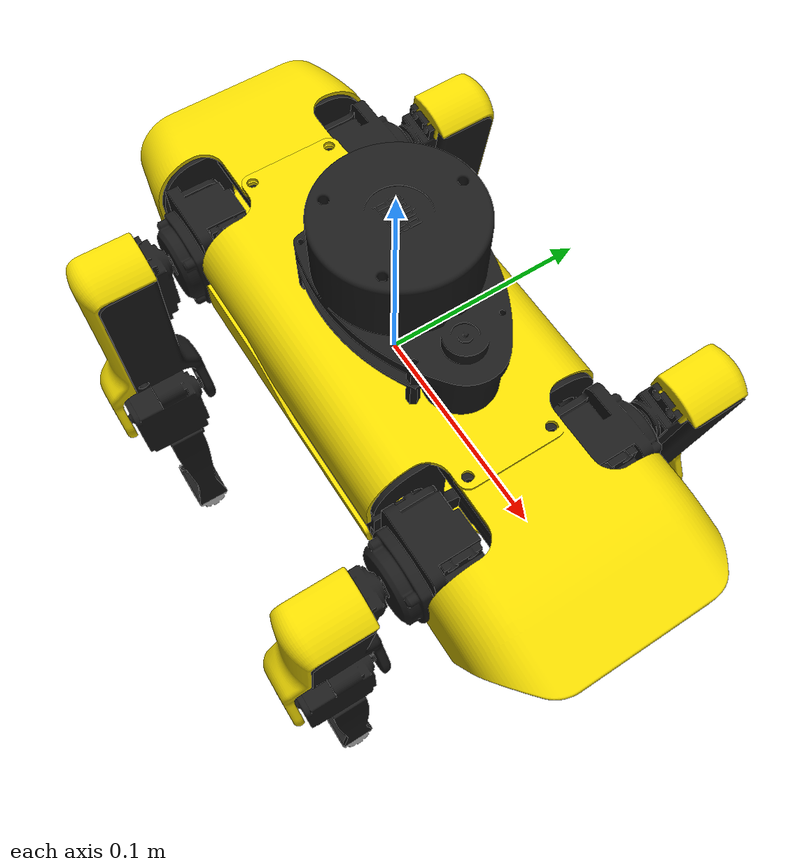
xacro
<?xml version="1.0"?>
<robot xmlns:xacro="http://www.ros.org/wiki/xacro" name="spot_micro_rviz">

  <material name="yellow">
    <color rgba="0.92 0.83 0.0 1"/>
  </material>
  <material name="black">
    <color rgba="0.1 0.1 0.1 1"/>
  </material>
  <material name="grey">
    <color rgba="0.6 0.6 0.6 1"/>
  </material>

  <!-- Params -->

  <xacro:property name="body_length" value="0.140" />
  <xacro:property name="body_width" value="0.110" />
  <xacro:property name="body_height" value="0.070" />

  <xacro:property name="lidar_length" value="0.0985" />
  <xacro:property name="lidar_width" value="0.0577" />
  <xacro:property name="lidar_height" value="0.070" />

  <xacro:property name="front_length" value="0.058" />
  <xacro:property name="rear_length" value="0.040" />

  <xacro:property name="shoulder_length" value="0.044" />
  <xacro:property name="shoulder_width" value="0.038" />

  <xacro:property name="leg_length" value="0.1075" />
  <xacro:property name="foot_length" value="0.130" />

  <xacro:property name="toe_radius" value="0.020" />
  <xacro:property name="toe_width" value="0.020" />
  <xacro:property name="shift" value="0.055" />
  <xacro:property name="shiftx" value="0.093" />
  <xacro:property name="shifty" value="0.039" />

  <!-- Macros -->

  <xacro:macro name="gen_shoulder" params="name left">
    <link name="${name}">
      <visual>
        <xacro:if value="${left}">
        <geometry>
          <mesh filename="package://spot_micro_rviz/urdf/stl/lshoulder.stl" scale="0.001 0.001 0.001"/>
        </geometry>
        <origin rpy="0 0 3.14159" xyz="0.135 0.015 -0.01"/>
        </xacro:if>
        <xacro:unless value="${left}">
        <geometry>
          <mesh filename="package://spot_micro_rviz/urdf/stl/rshoulder.stl" scale="0.001 0.001 0.001"/>
        </geometry>
        <origin rpy="0 0 3.14159" xyz="0.135 0.095 -0.01"/>
        </xacro:unless>
        <material name="black"/>
      </visual>
      <collision>
        <geometry>
          <box size="${shoulder_length} ${shoulder_width} ${body_height}"/>
        </geometry>
        <origin rpy="0 0 0" xyz="0 0 0"/>
      </collision>
      <inertial>
        <mass value="0.10"/>
        <inertia ixx="100" ixy="0" ixz="0" iyy="100" iyz="0" izz="100" />
      </inertial>
    </link>
  </xacro:macro>

  <xacro:macro name="gen_shoulder_joint" params="pos shiftx shifty">
    <joint name="${pos}_shoulder" type="revolute">
      <parent link="base_link"/>
      <child link="${pos}_shoulder_link"/>
      <axis xyz="1 0 0"/>
      <origin rpy="0 0 0" xyz="${shiftx} ${shifty} 0"/>
      <limit effort="1000.0" lower="-0.548" upper="0.548" velocity="0.7"/>
      <dynamics damping="0.0" friction="0.5"/>
    </joint>
  </xacro:macro>

  <xacro:macro name="gen_leg" params="name left">
    <link name="${name}_cover">
      <visual>
        <xacro:if value="${left}">
        <geometry>
          <mesh filename="package://spot_micro_rviz/urdf/stl/larm_cover.stl" scale="0.001 0.001 0.001"/>
        </geometry>
        <origin rpy="0 -0.139 3.14159" xyz="0.130 -0.040 -0.025"/>
        </xacro:if>
        <xacro:unless value="${left}">
        <geometry>
          <mesh filename="package://spot_micro_rviz/urdf/stl/rarm_cover.stl" scale="0.001 0.001 0.001"/>
        </geometry>
        <origin rpy="0 -0.139 3.14159" xyz="0.130 0.15 -0.025"/>
        </xacro:unless>
        <material name="yellow"/>
      </visual>
    </link>
    <link name="${name}">
      <visual>
        <xacro:if value="${left}">
        <geometry>
          <mesh filename="package://spot_micro_rviz/urdf/stl/larm.stl" scale="0.001 0.001 0.001"/>
        </geometry>
        <origin rpy="0 -0.139 3.14159" xyz="0.130 -0.040 -0.025"/>
        </xacro:if>
        <xacro:unless value="${left}">
        <geometry>
          <mesh filename="package://spot_micro_rviz/urdf/stl/rarm.stl" scale="0.001 0.001 0.001"/>
        </geometry>
        <origin rpy="0 -0.139 3.14159" xyz="0.130 0.15 -0.025"/>
        </xacro:unless>
        <material name="black"/>
      </visual>
      <collision>
        <origin rpy="0.0 0.0 0.0" xyz="0.0 0.0 -0.050"/>
        <geometry>
          <box size="0.028 0.036 ${leg_length}"/>
        </geometry>
      </collision>
      <inertial>
        <mass value="0.15"/>
        <inertia ixx="1000" ixy="0" ixz="0" iyy="1000" iyz="0" izz="1000" />
      </inertial>
    </link>
  </xacro:macro>

  <xacro:macro name="gen_leg_joint" params="pos shift">
    <joint name="${pos}_leg" type="revolute">
      <parent link="${pos}_shoulder_link"/>
      <child link="${pos}_leg_link"/>
      <axis xyz="0 1 0"/>
      <origin rpy="0 0 0" xyz="0 ${shift} 0"/>
      <limit effort="1000.0" lower="-2.666" upper="1.548" velocity="0.5"/>
      <dynamics damping="0.0" friction="0.0"/>
    </joint>

    <joint name="${pos}_leg_cover_joint" type="fixed">
    <parent link="${pos}_leg_link"/>
    <child link="${pos}_leg_link_cover"/>
        <origin xyz="0 0 0"/>
  </joint>
  </xacro:macro>

  <xacro:macro name="gen_foot" params="name left">
    <link name="${name}">
      <visual>
        <xacro:if value="${left}">
        <geometry>
          <mesh filename="package://spot_micro_rviz/urdf/stl/lfoot.stl" scale="0.001 0.001 0.001"/>
        </geometry>
        <origin rpy="0 0 3.14159" xyz="0.120 -0.04 0.1"/>
        </xacro:if>
        <xacro:unless value="${left}">
        <geometry>
          <mesh filename="package://spot_micro_rviz/urdf/stl/rfoot.stl" scale="0.001 0.001 0.001"/>
        </geometry>
        <origin rpy="0 0 3.14159" xyz="0.120 0.15 0.1"/>
        </xacro:unless>
        <material name="black"/>
      </visual>
      <collision>
        <geometry>
          <box size="0.026 0.020 ${foot_length}"/>
        </geometry>
        <origin rpy="0.0 0.0 0.0" xyz="0.0 0.0 -0.050"/>
      </collision>
      <inertial>
        <mass value="0.1"/>
        <inertia ixx="1000" ixy="0" ixz="0" iyy="1000" iyz="0" izz="1000" />
      </inertial>
    </link>
  </xacro:macro>

  <xacro:macro name="gen_foot_joint" params="pos">
    <joint name="${pos}_foot" type="revolute">
      <parent link="${pos}_leg_link"/>
      <child link="${pos}_foot_link"/>
      <axis xyz="0 1 0"/>
      <origin rpy="0 0 0" xyz="0 0 -${leg_length}"/>
      <limit effort="1000.0" lower="-2.6" upper="0.1" velocity="0.5"/>
      <dynamics damping="0.0" friction="0.5"/>
    </joint>
  </xacro:macro>

  <xacro:macro name="gen_toe" params="name">
    <link name="${name}">
      <visual>
        <geometry>
        <mesh filename="package://spot_micro_rviz/urdf/stl/foot.stl" scale="0.001 0.001 0.001"/>
        </geometry>
        <origin rpy="0 -0.40010 3.14159" xyz="0.00 0.01 0.015"/>
        <material name="grey"/>
      </visual>
      <collision>
        <geometry>
          <sphere radius="${toe_radius}" />
        </geometry>
        <origin rpy="0 0 0" xyz="0 0 ${toe_radius}"/>
        <contact_coefficients mu="1.1" />
      </collision>
      <inertial>
        <mass value="0.05"/>
        <inertia ixx="1000" ixy="0" ixz="0" iyy="1000" iyz="0" izz="1000" />
      </inertial>
    </link>
  </xacro:macro>

 <xacro:macro name="gen_toe_joint" params="pos">
    <joint name="${pos}_toe" type="fixed">
      <parent link="${pos}_foot_link"/>
      <child link="${pos}_toe_link"/>
      <origin xyz="0 0 -${foot_length}"/>
    </joint>
  </xacro:macro>

  <xacro:macro name="gen_full_leg_joint" params="pos shiftx shifty shift left">
    <xacro:gen_shoulder name="${pos}_shoulder_link" left="${left}"/>
    <xacro:gen_leg name="${pos}_leg_link" left="${left}"/>
    <xacro:gen_foot name="${pos}_foot_link" left="${left}"/>
    <xacro:gen_toe name="${pos}_toe_link"/>

    <xacro:gen_shoulder_joint pos="${pos}" shiftx="${shiftx}" shifty="${shifty}"/>
    <xacro:gen_leg_joint pos="${pos}" shift="${shift}"/>
    <xacro:gen_foot_joint pos="${pos}"/>
    <xacro:gen_toe_joint pos="${pos}"/>
  </xacro:macro>

  <!-- Robot Body -->

  <link name="base_link">
    <visual>
      <geometry>
        <mesh filename="package://spot_micro_rviz/urdf/stl/mainbody.stl" scale="0.001 0.001 0.001"/>
      </geometry>
      <material name="black"/>
      <origin rpy="0 0 0" xyz="-0.042 -0.055 -0.010"/>
    </visual>
    <collision>
      <geometry>
        <box size="${body_length} ${body_width} ${body_height}"/>
      </geometry>
      <origin rpy="0 0 0" xyz="0 0 0"/>
    </collision>
    <inertial>
      <mass value="2.80"/>
      <inertia ixx="100" ixy="0" ixz="0" iyy="100" iyz="0" izz="100" />
    </inertial>
  </link>

  <!-- Lidar Backpack -->

   <link name="lidar_link">
    <visual>
      <geometry>
        <mesh filename="package://spot_micro_rviz/urdf/stl/rplidar_main.STL" scale="0.001 0.001 0.001"/>
      </geometry>
      <material name="black"/>
      <origin rpy="1.57075 0 0" xyz="${-lidar_length/2+0.015} ${lidar_width/2+0.007} 0"/>
    </visual>
    <collision>
      <geometry>
        <box size="${lidar_length} ${lidar_width} ${lidar_height}"/>
      </geometry>
      <origin rpy="0 0 0" xyz="0 0 0"/>
    </collision>
    <inertial>
      <mass value="0.50"/>
      <inertia ixx="100" ixy="0" ixz="0" iyy="100" iyz="0" izz="100" />
    </inertial>
  </link>
  <joint name="base_lidar" type="fixed">
    <parent link="base_link"/>
    <child link="lidar_link"/>
        <origin xyz="0 0 ${body_height/2}"/>
  </joint>

  <link name="rear_link">
    <visual>
      <geometry>
        <mesh filename="package://spot_micro_rviz/urdf/stl/backpart.stl" scale="0.001 0.001 0.001"/>
      </geometry>
      <origin rpy="0 0 3.14159" xyz="0.04 0.055 -0.010"/>
      <material name="yellow"/>
    </visual>
    <collision>
      <geometry>
        <box size="${rear_length} ${body_width} ${body_height}"/>
      </geometry>
      <origin rpy="0 0 0" xyz="0.135 0 0"/>
    </collision>
    <inertial>
      <mass value="0.20"/>
      <inertia ixx="100" ixy="0" ixz="0" iyy="100" iyz="0" izz="100" />
    </inertial>
  </link>
  <joint name="base_rear" type="fixed">
    <parent link="base_link"/>
    <child link="rear_link"/>
  </joint>

  <link name="front_link">
    <visual>
      <geometry>
        <mesh filename="package://spot_micro_rviz/urdf/stl/frontpart.stl" scale="0.001 0.001 0.001"/>
      </geometry>
      <origin rpy="0 0 3.14159" xyz="0.040 0.055 -0.010"/>
      <material name="yellow"/>
    </visual>
    <collision>
      <geometry>
        <box size="${front_length} ${body_width} ${body_height}"/>
      </geometry>
      <origin rpy="0 0 0" xyz="-0.145 0 0"/>
    </collision>
    <inertial>
      <mass value="0.20"/>
      <inertia ixx="100" ixy="0" ixz="0" iyy="100" iyz="0" izz="100" />
    </inertial>
  </link>
  <joint name="base_front" type="fixed">
    <parent link="base_link"/>
    <child link="front_link"/>
  </joint>

  <!-- create Legs -->

  <xacro:gen_full_leg_joint pos="front_left" shiftx="${shiftx}" shifty="${shifty}" shift="${shift}" left="true"/>
  <xacro:gen_full_leg_joint pos="front_right" shiftx="${shiftx}" shifty="-${shifty}" shift="-${shift}" left="false"/>
  <xacro:gen_full_leg_joint pos="rear_left" shiftx="-${shiftx}" shifty="${shifty}" shift="${shift}" left="true"/>
  <xacro:gen_full_leg_joint pos="rear_right" shiftx="-${shiftx}" shifty="-${shifty}" shift="-${shift}" left="false"/>

</robot>
